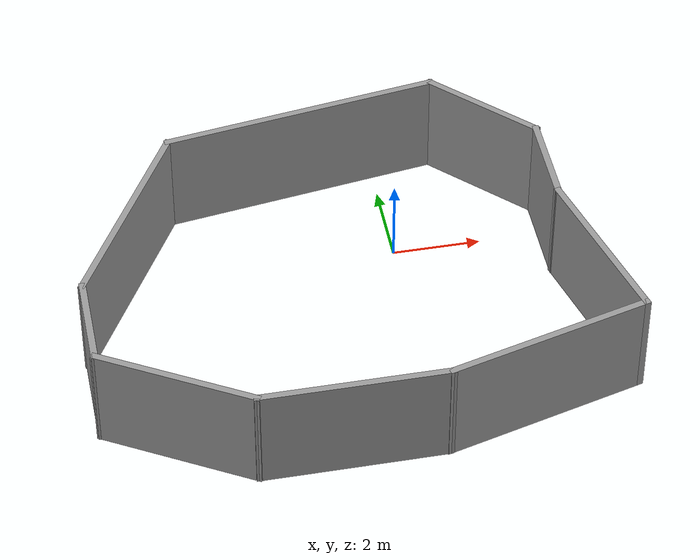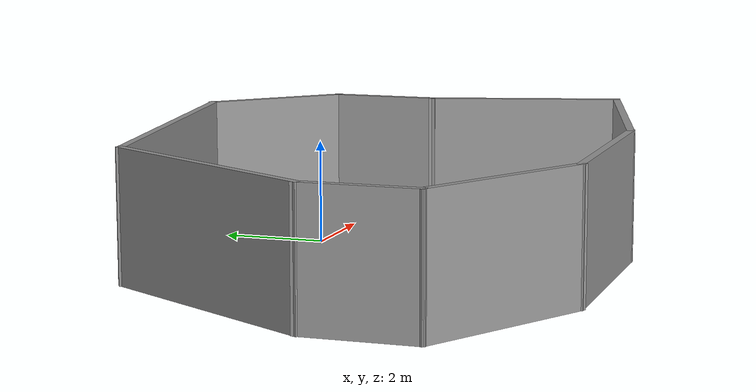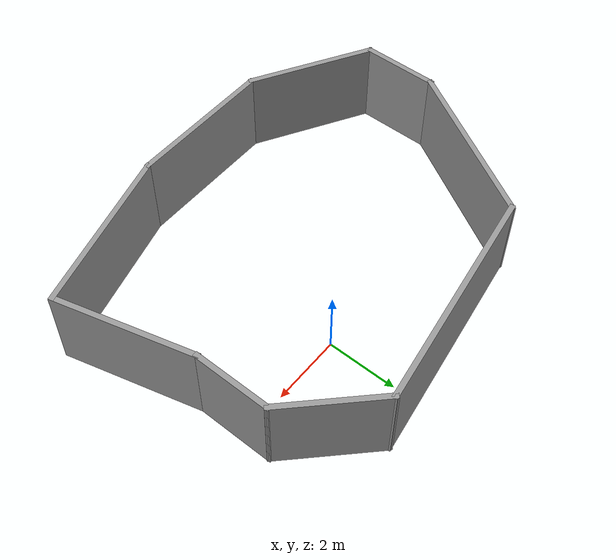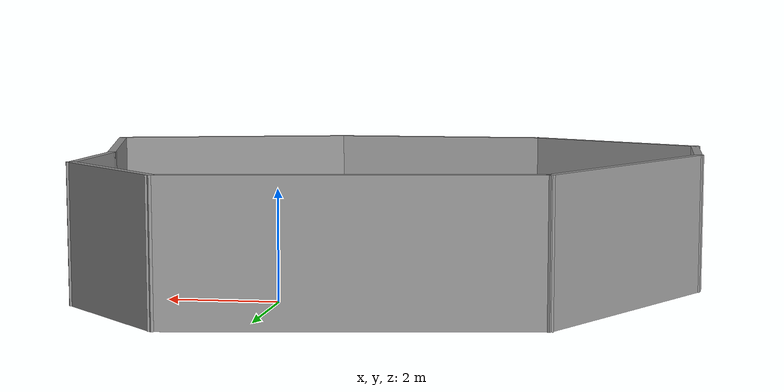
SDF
<?xml version='1.0'?>
<sdf version='1.7'>
  <model name='qwerty'>
    <pose>-1.41849 -1.63671 0 0 -0 0</pose>
    <link name='Wall_0'>
      <collision name='Wall_0_Collision'>
        <geometry>
          <box>
            <size>5 0.15 2.5</size>
          </box>
        </geometry>
        <pose>0 0 1.25 0 -0 0</pose>
      </collision>
      <visual name='Wall_0_Visual'>
        <pose>0 0 1.25 0 -0 0</pose>
        <geometry>
          <box>
            <size>5 0.15 2.5</size>
          </box>
        </geometry>
        <material>
          <script>
            <uri>file://media/materials/scripts/gazebo.material</uri>
            <name>Gazebo/Grey</name>
          </script>
          <ambient>1 1 1 1</ambient>
        </material>
        <meta>
          <layer>0</layer>
        </meta>
      </visual>
      <pose>-4.61268 1.48599 0 0 -0 -2.0944</pose>
    </link>
    <link name='Wall_2'>
      <collision name='Wall_2_Collision'>
        <geometry>
          <box>
            <size>2.25 0.15 2.5</size>
          </box>
        </geometry>
        <pose>0 0 1.25 0 -0 0</pose>
      </collision>
      <visual name='Wall_2_Visual'>
        <pose>0 0 1.25 0 -0 0</pose>
        <geometry>
          <box>
            <size>2.25 0.15 2.5</size>
          </box>
        </geometry>
        <material>
          <script>
            <uri>file://media/materials/scripts/gazebo.material</uri>
            <name>Gazebo/Grey</name>
          </script>
          <ambient>1 1 1 1</ambient>
        </material>
        <meta>
          <layer>0</layer>
        </meta>
      </visual>
      <pose>-5.82518 -1.66413 0 0 -0 -1.5708</pose>
    </link>
    <link name='Wall_3'>
      <collision name='Wall_3_Collision'>
        <geometry>
          <box>
            <size>3.75 0.15 2.5</size>
          </box>
        </geometry>
        <pose>0 0 1.25 0 -0 0</pose>
      </collision>
      <visual name='Wall_3_Visual'>
        <pose>0 0 1.25 0 -0 0</pose>
        <geometry>
          <box>
            <size>3.75 0.15 2.5</size>
          </box>
        </geometry>
        <material>
          <script>
            <uri>file://media/materials/scripts/gazebo.material</uri>
            <name>Gazebo/Grey</name>
          </script>
          <ambient>1 1 1 1</ambient>
        </material>
        <meta>
          <layer>0</layer>
        </meta>
      </visual>
      <pose>-4.26633 -3.61413 0 0 -0 -0.523599</pose>
    </link>
    <link name='Wall_4'>
      <collision name='Wall_4_Collision'>
        <geometry>
          <box>
            <size>4.25 0.15 2.5</size>
          </box>
        </geometry>
        <pose>0 0 1.25 0 -0 0</pose>
      </collision>
      <visual name='Wall_4_Visual'>
        <pose>0 0 1.25 0 -0 0</pose>
        <geometry>
          <box>
            <size>4.25 0.15 2.5</size>
          </box>
        </geometry>
        <material>
          <script>
            <uri>file://media/materials/scripts/gazebo.material</uri>
            <name>Gazebo/Grey</name>
          </script>
          <ambient>1 1 1 1</ambient>
        </material>
        <meta>
          <layer>0</layer>
        </meta>
      </visual>
      <pose>-0.657485 -4.51412 0 0 -0 0</pose>
    </link>
    <link name='Wall_5'>
      <collision name='Wall_5_Collision'>
        <geometry>
          <box>
            <size>4.75 0.15 2.5</size>
          </box>
        </geometry>
        <pose>0 0 1.25 0 -0 0</pose>
      </collision>
      <visual name='Wall_5_Visual'>
        <pose>0 0 1.25 0 -0 0</pose>
        <geometry>
          <box>
            <size>4.75 0.15 2.5</size>
          </box>
        </geometry>
        <material>
          <script>
            <uri>file://media/materials/scripts/gazebo.material</uri>
            <name>Gazebo/Grey</name>
          </script>
          <ambient>1 1 1 1</ambient>
        </material>
        <meta>
          <layer>0</layer>
        </meta>
      </visual>
      <pose>3.61414 -3.91884 0 0 -0 0.261799</pose>
    </link>
    <link name='Wall_6'>
      <collision name='Wall_6_Collision'>
        <geometry>
          <box>
            <size>4 0.15 2.5</size>
          </box>
        </geometry>
        <pose>0 0 1.25 0 -0 0</pose>
      </collision>
      <visual name='Wall_6_Visual'>
        <pose>0 0 1.25 0 -0 0</pose>
        <geometry>
          <box>
            <size>4 0.15 2.5</size>
          </box>
        </geometry>
        <material>
          <script>
            <uri>file://media/materials/scripts/gazebo.material</uri>
            <name>Gazebo/Grey</name>
          </script>
          <ambient>1 1 1 1</ambient>
        </material>
        <meta>
          <layer>0</layer>
        </meta>
      </visual>
      <pose>5.33755 -1.46415 0 0 -0 1.8326</pose>
    </link>
    <link name='Wall_7'>
      <collision name='Wall_7_Collision'>
        <geometry>
          <box>
            <size>2.25 0.15 2.5</size>
          </box>
        </geometry>
        <pose>0 0 1.25 0 -0 0</pose>
      </collision>
      <visual name='Wall_7_Visual'>
        <pose>0 0 1.25 0 -0 0</pose>
        <geometry>
          <box>
            <size>2.25 0.15 2.5</size>
          </box>
        </geometry>
        <material>
          <script>
            <uri>file://media/materials/scripts/gazebo.material</uri>
            <name>Gazebo/Grey</name>
          </script>
          <ambient>1 1 1 1</ambient>
        </material>
        <meta>
          <layer>0</layer>
        </meta>
      </visual>
      <pose>4.83932 1.44526 0 0 -0 1.5708</pose>
    </link>
    <link name='Wall_8'>
      <collision name='Wall_8_Collision'>
        <geometry>
          <box>
            <size>3 0.15 2.5</size>
          </box>
        </geometry>
        <pose>0 0 1.25 0 -0 0</pose>
      </collision>
      <visual name='Wall_8_Visual'>
        <pose>0 0 1.25 0 -0 0</pose>
        <geometry>
          <box>
            <size>3 0.15 2.5</size>
          </box>
        </geometry>
        <material>
          <script>
            <uri>file://media/materials/scripts/gazebo.material</uri>
            <name>Gazebo/Grey</name>
          </script>
          <ambient>1 1 1 1</ambient>
        </material>
        <meta>
          <layer>0</layer>
        </meta>
      </visual>
      <pose>3.83169 3.50288 0 0 -0 2.35619</pose>
    </link>
    <link name='Wall_9'>
      <collision name='Wall_9_Collision'>
        <geometry>
          <box>
            <size>6.44251 0.15 2.5</size>
          </box>
        </geometry>
        <pose>0 0 1.25 0 -0 0</pose>
      </collision>
      <visual name='Wall_9_Visual'>
        <pose>0 0 1.25 0 -0 0</pose>
        <geometry>
          <box>
            <size>6.44251 0.15 2.5</size>
          </box>
        </geometry>
        <material>
          <script>
            <uri>file://media/materials/scripts/gazebo.material</uri>
            <name>Gazebo/Grey</name>
          </script>
          <ambient>1 1 1 1</ambient>
        </material>
        <meta>
          <layer>0</layer>
        </meta>
      </visual>
      <pose>-0.288056 4.0483 0 0 -0 -2.99415</pose>
    </link>
    <static>1</static>
  </model>
</sdf>
